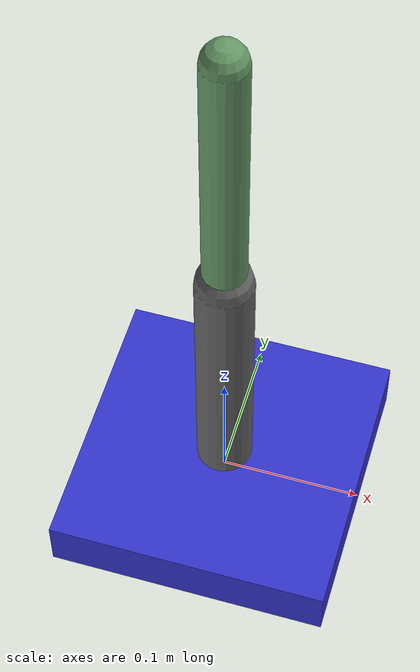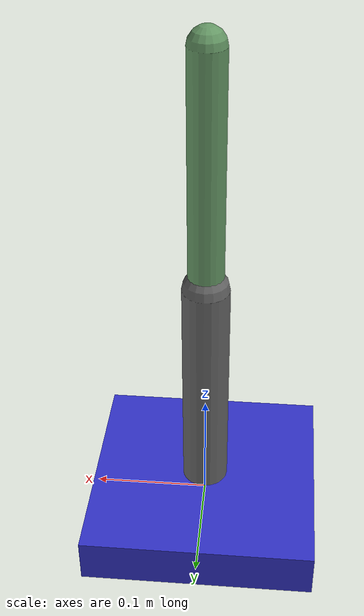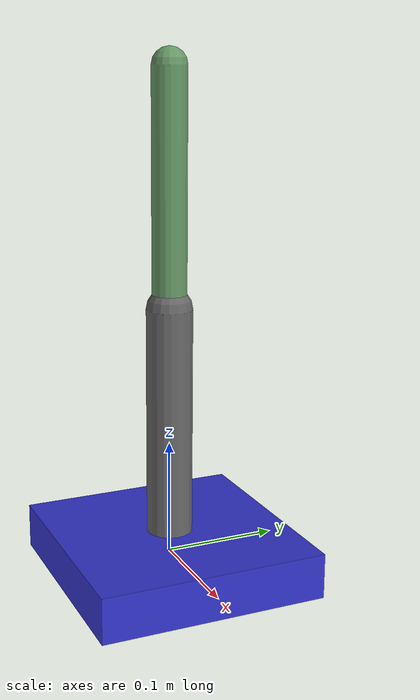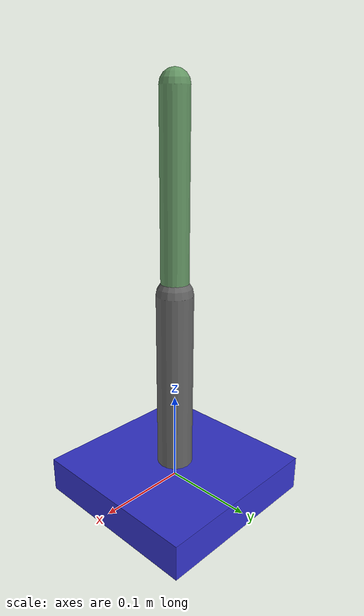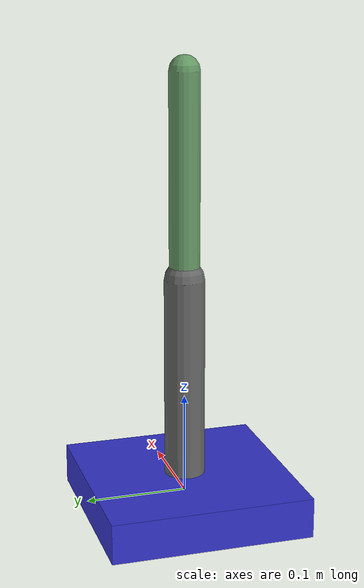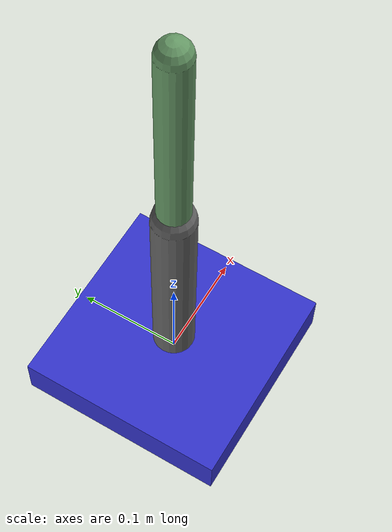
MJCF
<?xml version="1.0" ?>
<mujoco model="planar_manipulator">
    <compiler angle="degree"/>
    <option timestep="0.01" gravity="0 0 -9.81"/>

    <visual>
        <quality shadowsize="2048"/>
        <headlight/>
    </visual>

    <worldbody>
        <light name="main_light" pos="0 0 2" dir="0 0 -1" diffuse="0.8 0.8 0.8"/>
        <body name="base" pos="0 0 0">
            <geom type="box" size="0.1 0.1 0.02" rgba="0.2 0.2 0.8 1"/>
            <!-- shoulder joint attaches first link above fixed base -->
            <body name="link1" pos="0 0 0.02">
                <joint name="shoulder" type="hinge" axis="0 1 0" range="-90 90"/>
                <geom type="capsule" fromto="0 0 0 0 0 0.2" size="0.02" rgba="0.4 0.4 0.4 1"/>
                <body name="link2" pos="0 0 0.2">
                    <joint name="elbow" type="hinge" axis="0 1 0" range="-90 90"/>
                    <geom type="capsule" fromto="0 0 0 0 0 0.2" size="0.015" rgba="0.4 0.6 0.4 1"/>
                    <site name="end_effector" pos="0 0 0.2" size="0.01" rgba="1 0 0 1"/>
                </body>
            </body>
        </body>
    </worldbody>

    <actuator>
        <!-- apply torque directly with unit gear -->
        <motor name="shoulder" joint="shoulder" gear="100" ctrlrange="-1 1"/>
        <motor name="elbow" joint="elbow" gear="100" ctrlrange="-1 1"/>
    </actuator>
</mujoco>
